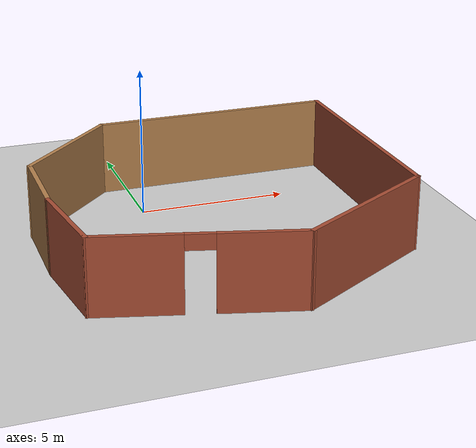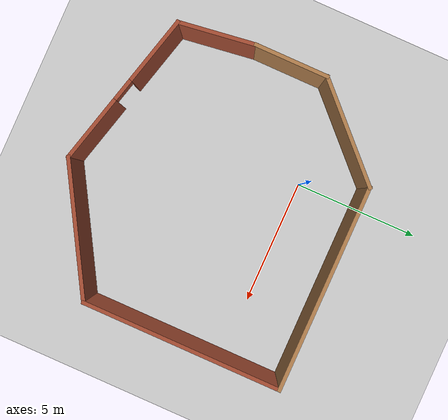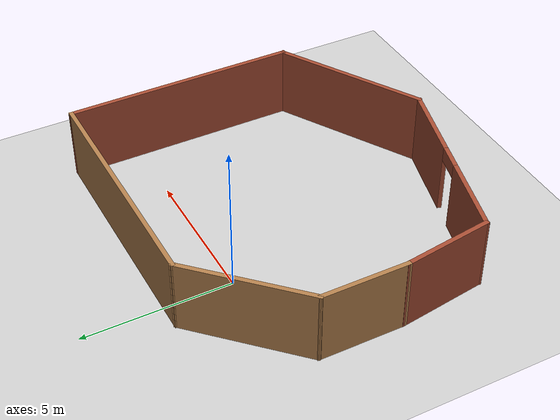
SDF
<sdf version="1.7">
 <world name="default">
  <light name="sun" type="directional">
   <pose>0 0 10 0 -0 0</pose>
   <diffuse>0.8 0.8 0.8 1</diffuse>
   <specular>0.2 0.2 0.2 1</specular>
   <attenuation>
    <range>1000</range>
    <constant>0.9</constant>
    <linear>0.01</linear>
    <quadratic>0.001</quadratic>
   </attenuation>
   <direction>-0.5 0.1 -0.9</direction>
   <spot><inner_angle>0</inner_angle><outer_angle>0</outer_angle><falloff>0</falloff></spot>
  </light>
  <model name="ground_plane">
   <static>1</static>
   <link name="link">
    <collision name="collision">
     <geometry><plane><normal>0 0 1</normal><size>100 100</size></plane></geometry>
     <surface><friction><ode><mu>100</mu><mu2>50</mu2></ode></friction></surface>
    </collision>
    <visual name="visual">
     <cast_shadows>0</cast_shadows>
     <geometry><plane><normal>0 0 1</normal><size>100 100</size></plane></geometry>
     <material>
      <script><uri>file://media/materials/scripts/gazebo.material</uri><name>Gazebo/Grey</name></script>
     </material>
    </visual>
   </link>
  </model>
  <gravity>0 0 -9.8</gravity>
  <magnetic_field>6e-06 2.3e-05 -4.2e-05</magnetic_field>
  <atmosphere type="adiabatic"/>
  <physics type="ode">
   <max_step_size>0.001</max_step_size>
   <real_time_factor>1</real_time_factor>
   <real_time_update_rate>1000</real_time_update_rate>
  </physics>
  <scene><ambient>0.4 0.4 0.4 1</ambient><background>0.7 0.7 0.7 1</background><shadows>1</shadows></scene>
  <audio><device>default</device></audio>
  <spherical_coordinates>
   <surface_model>EARTH_WGS84</surface_model>
   <latitude_deg>0</latitude_deg>
   <longitude_deg>0</longitude_deg>
   <elevation>0</elevation>
   <heading_deg>0</heading_deg>
  </spherical_coordinates>
  <model name="my_building">
   <pose>1.68641 -3.00484 0 0 -0 0</pose>
   <link name="Wall_2">
    <collision name="Wall_2_Collision">
     <geometry><box><size>3 0.15 2.5</size></box></geometry>
     <pose>0 0 1.25 0 -0 0</pose>
    </collision>
    <visual name="Wall_2_Visual">
     <pose>0 0 1.25 0 -0 0</pose>
     <geometry><box><size>3 0.15 2.5</size></box></geometry>
     <material>
      <script><uri>file://media/materials/scripts/gazebo.material</uri><name>Gazebo/Wood</name></script>
      <ambient>1 1 1 1</ambient>
     </material>
     <meta><layer>0</layer></meta>
    </visual>
    <pose>-5.58615 0.759778 0 0 -0 1.5708</pose>
   </link>
   <link name="Wall_3">
    <collision name="Wall_3_Collision">
     <geometry><box><size>4.5 0.15 2.5</size></box></geometry>
     <pose>0 0 1.25 0 -0 0</pose>
    </collision>
    <visual name="Wall_3_Visual">
     <pose>0 0 1.25 0 -0 0</pose>
     <geometry><box><size>4.5 0.15 2.5</size></box></geometry>
     <material>
      <script><uri>file://media/materials/scripts/gazebo.material</uri><name>Gazebo/Wood</name></script>
      <ambient>1 1 1 1</ambient>
     </material>
     <meta><layer>0</layer></meta>
    </visual>
    <pose>-4.04819 3.72274 0 0 -0 0.785398</pose>
   </link>
   <link name="Wall_4">
    <collision name="Wall_4_Collision">
     <geometry><box><size>8.25 0.15 2.5</size></box></geometry>
     <pose>0 0 1.25 0 -0 0</pose>
    </collision>
    <visual name="Wall_4_Visual">
     <pose>0 0 1.25 0 -0 0</pose>
     <geometry><box><size>8.25 0.15 2.5</size></box></geometry>
     <material>
      <script><uri>file://media/materials/scripts/gazebo.material</uri><name>Gazebo/Wood</name></script>
      <ambient>1 1 1 1</ambient>
     </material>
     <meta><layer>0</layer></meta>
    </visual>
    <pose>1.53976 5.26069 0 0 -0 0</pose>
   </link>
   <link name="Wall_5">
    <collision name="Wall_5_Collision">
     <geometry><box><size>8 0.15 2.5</size></box></geometry>
     <pose>0 0 1.25 0 -0 0</pose>
    </collision>
    <visual name="Wall_5_Visual">
     <pose>0 0 1.25 0 -0 0</pose>
     <geometry><box><size>8 0.15 2.5</size></box></geometry>
     <material>
      <script><uri>file://media/materials/scripts/gazebo.material</uri><name>Gazebo/Bricks</name></script>
      <ambient>1 1 1 1</ambient>
     </material>
     <meta><layer>0</layer></meta>
    </visual>
    <pose>5.58976 1.33569 0 0 -0 -1.5708</pose>
   </link>
   <link name="Wall_6">
    <collision name="Wall_6_Collision">
     <geometry><box><size>5.5 0.15 2.5</size></box></geometry>
     <pose>0 0 1.25 0 -0 0</pose>
    </collision>
    <visual name="Wall_6_Visual">
     <pose>0 0 1.25 0 -0 0</pose>
     <geometry><box><size>5.5 0.15 2.5</size></box></geometry>
     <material>
      <script><uri>file://media/materials/scripts/gazebo.material</uri><name>Gazebo/Bricks</name></script>
      <ambient>1 1 1 1</ambient>
     </material>
     <meta><layer>0</layer></meta>
    </visual>
    <pose>3.27315 -3.92681 0 0 -0 -2.61799</pose>
   </link>
   <link name="Wall_7">
    <pose>-2.11029 -4.44256 0 0 -0 2.87979</pose>
    <visual name="Wall_7_Visual_0">
     <pose>-1.85709 0 1.25 0 -0 0</pose>
     <geometry><box><size>2.78583 0.15 2.5</size></box></geometry>
     <material>
      <script><uri>file://media/materials/scripts/gazebo.material</uri><name>Gazebo/Bricks</name></script>
      <ambient>1 1 1 1</ambient>
     </material>
     <meta><layer>0</layer></meta>
    </visual>
    <collision name="Wall_7_Collision_0">
     <geometry><box><size>2.78583 0.15 2.5</size></box></geometry>
     <pose>-1.85709 0 1.25 0 -0 0</pose>
    </collision>
    <visual name="Wall_7_Visual_1">
     <pose>1.84291 0 1.25 0 -0 0</pose>
     <geometry><box><size>2.81417 0.15 2.5</size></box></geometry>
     <material>
      <script><uri>file://media/materials/scripts/gazebo.material</uri><name>Gazebo/Bricks</name></script>
      <ambient>1 1 1 1</ambient>
     </material>
     <meta><layer>0</layer></meta>
    </visual>
    <collision name="Wall_7_Collision_1">
     <geometry><box><size>2.81417 0.15 2.5</size></box></geometry>
     <pose>1.84291 0 1.25 0 -0 0</pose>
    </collision>
    <visual name="Wall_7_Visual_2">
     <pose>-0.014174 0 2.25 0 -0 0</pose>
     <geometry><box><size>0.9 0.15 0.5</size></box></geometry>
     <material>
      <script><uri>file://media/materials/scripts/gazebo.material</uri><name>Gazebo/Bricks</name></script>
      <ambient>1 1 1 1</ambient>
     </material>
     <meta><layer>0</layer></meta>
    </visual>
    <collision name="Wall_7_Collision_2">
     <geometry><box><size>0.9 0.15 0.5</size></box></geometry>
     <pose>-0.014174 0 2.25 0 -0 0</pose>
    </collision>
   </link>
   <link name="Wall_8">
    <collision name="Wall_8_Collision">
     <geometry><box><size>3.13376 0.15 2.5</size></box></geometry>
     <pose>0 0 1.25 0 -0 0</pose>
    </collision>
    <visual name="Wall_8_Visual">
     <pose>0 0 1.25 0 -0 0</pose>
     <geometry><box><size>3.13376 0.15 2.5</size></box></geometry>
     <material>
      <script><uri>file://media/materials/scripts/gazebo.material</uri><name>Gazebo/Bricks</name></script>
      <ambient>1 1 1 1</ambient>
     </material>
     <meta><layer>0</layer></meta>
    </visual>
    <pose>-5.38163 -2.14301 0 0 -0 1.70832</pose>
   </link>
   <static>1</static>
  </model>
 </world>
</sdf>
